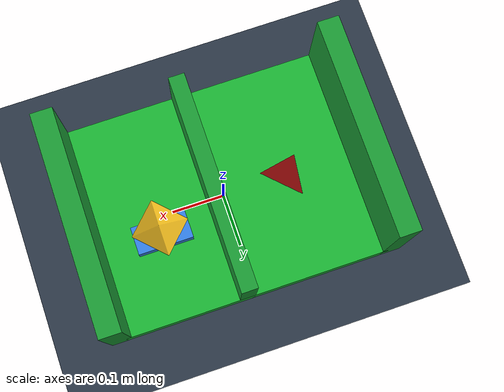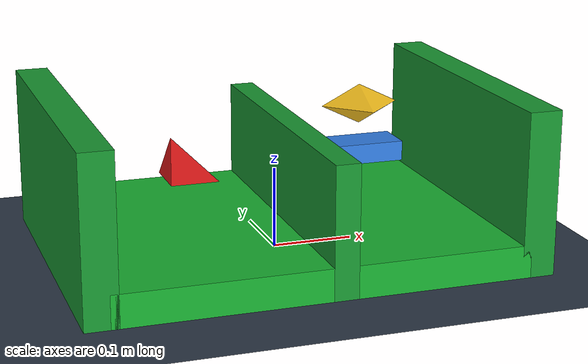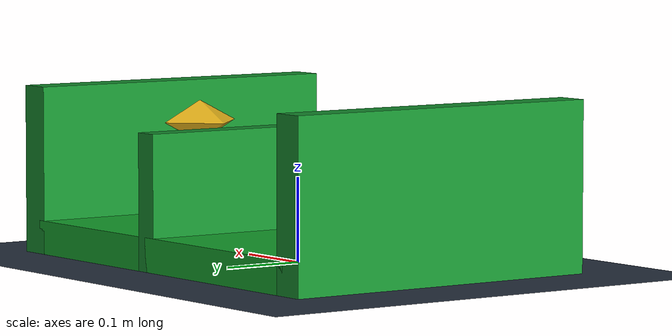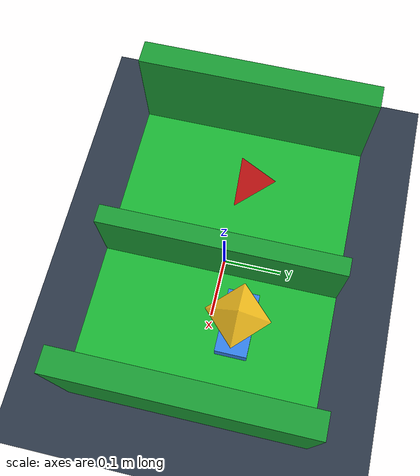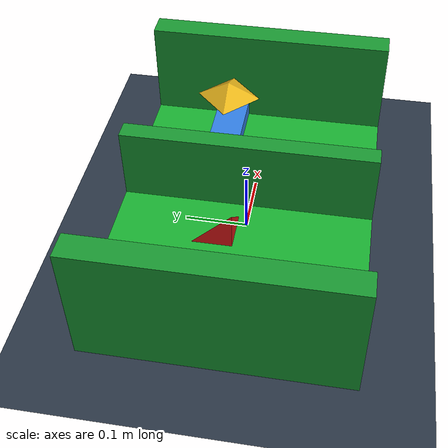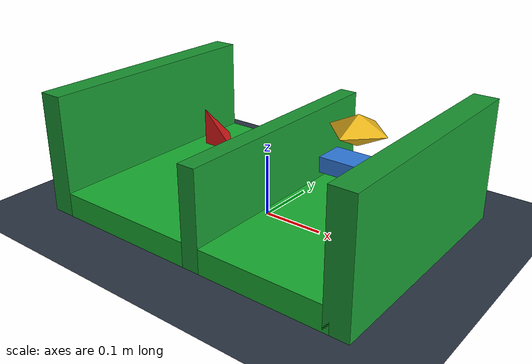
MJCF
<mujoco model="assembly_puzzle">
  <compiler angle="radian"/>
  <option timestep="0.002" integrator="Euler" iterations="1000" tolerance="1e-6" gravity="0 0 -9.81" cone="elliptic" o_solref="0.006 1" o_solimp="0.9 0.95 0.001 0.5 2"/>
  <asset>
    <texture name="floor_grid" type="2d" builtin="checker" rgb1="0.12 0.15 0.20" rgb2="0.22 0.28 0.35" width="512" height="512"/>
    <material name="floor_material" texture="floor_grid" texrepeat="8 8" reflectance="0.1"/>
    <mesh name="tetra" vertex="0 0 0  0.06 0 0  0 0.06 0  0 0 0.06"/>
    <mesh name="brick" vertex="-0.05 -0.025 -0.0125  0.05 -0.025 -0.0125  0.05 0.025 -0.0125  -0.05 0.025 -0.0125  -0.05 -0.025 0.0125  0.05 -0.025 0.0125  0.05 0.025 0.0125  -0.05 0.025 0.0125"/>
    <mesh name="octa" vertex="0.05 0 0  -0.05 0 0  0 0.05 0  0 -0.05 0  0 0 0.025  0 0 -0.025"/>
  </asset>
  <worldbody>
    <light directional="true" pos="0 -2 5" dir="0 0.3 -1" diffuse="0.9 0.9 0.9" specular="0.3 0.3 0.3"/>
    <geom name="floor" type="plane" size="5 5 0.1" pos="0 0 0" material="floor_material" contype="0" conaffinity="0"/>
    <!-- Tray: floor slab, two end walls, one divider making two lanes
         (contains lateral scoot from single-point face contacts). -->
    <body name="tray" pos="0 0 0">
      <geom name="trayfloor" type="box" size="0.25 0.2 0.02" pos="0 0 0.02" rgba="0.1 0.7 0.2 1" mass="0" contype="0" conaffinity="0" condim="3"/>
      <geom name="wallL" type="box" size="0.02 0.2 0.1" pos="-0.26 0 0.1" rgba="0.1 0.6 0.2 1" mass="0" contype="0" conaffinity="0" condim="3"/>
      <geom name="wallR" type="box" size="0.02 0.2 0.1" pos="0.26 0 0.1" rgba="0.1 0.6 0.2 1" mass="0" contype="0" conaffinity="0" condim="3"/>
      <geom name="divider" type="box" size="0.015 0.2 0.08" pos="0.02 0 0.08" rgba="0.1 0.6 0.2 1" mass="0" contype="0" conaffinity="0" condim="3"/>
    </body>
    <body name="pieceA" pos="-0.13 0 0.09">
      <freejoint name="freeA"/>
      <geom name="tetra_geom" type="mesh" mesh="tetra" rgba="0.9 0.1 0.1 1" mass="0.2" friction="0.6 0.05 0.02" contype="0" conaffinity="0" condim="3"/>
    </body>
    <body name="pieceB" pos="0.13 0.05 0.1">
      <freejoint name="freeB"/>
      <geom name="brick_geom" type="mesh" mesh="brick" rgba="0.2 0.5 0.9 1" mass="0.3" friction="0.6 0.05 0.02" contype="0" conaffinity="0" condim="3"/>
    </body>
    <body name="pieceC" pos="0.13 0.05 0.16">
      <freejoint name="freeC"/>
      <geom name="octa_geom" type="mesh" mesh="octa" rgba="0.9 0.7 0.1 1" mass="0.15" friction="0.6 0.05 0.02" contype="0" conaffinity="0" condim="3"/>
    </body>
  </worldbody>
  <contact>
    <pair geom1="tetra_geom" geom2="trayfloor"/>
    <pair geom1="tetra_geom" geom2="wallL"/>
    <pair geom1="brick_geom" geom2="trayfloor"/>
    <pair geom1="brick_geom" geom2="wallR"/>
    <pair geom1="brick_geom" geom2="divider"/>
    <pair geom1="brick_geom" geom2="octa_geom"/>
  </contact>
</mujoco>
